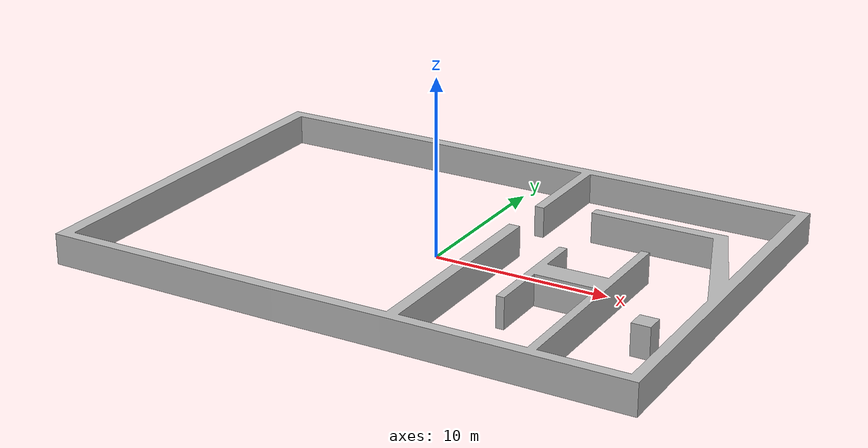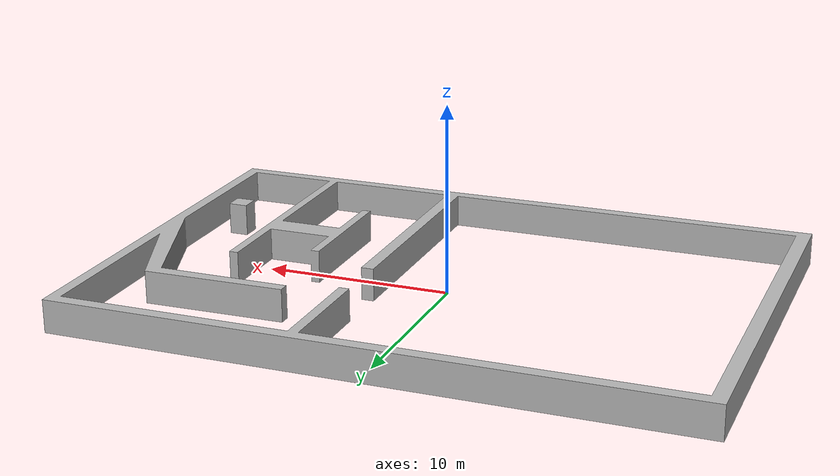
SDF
<?xml version="1.0"?>
<sdf version="1.5">
<model name="enviornment">
      <pose>0 0 0  0 0 0</pose>
      <static>true</static>
      <link name="body">
      <collision name="collision">
          <geometry>
            <mesh><uri>file://obstacle.dae</uri></mesh>
            <scale>1 1 1</scale>
          </geometry>
        </collision>
        <visual name="visual">
          <geometry>
            <mesh><uri>file://obstacle.dae</uri></mesh>
            <scale>1 1 1</scale>
          </geometry>
        </visual>
      </link>
    </model>
    </sdf>
